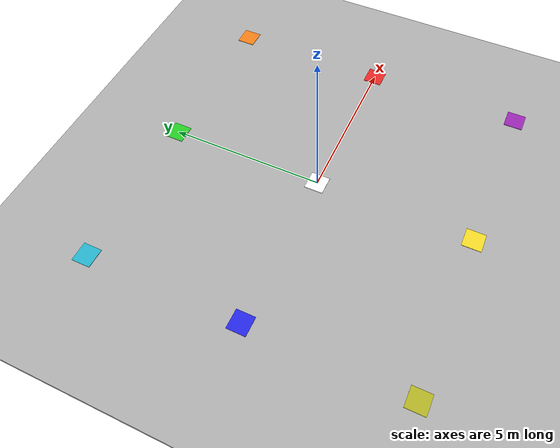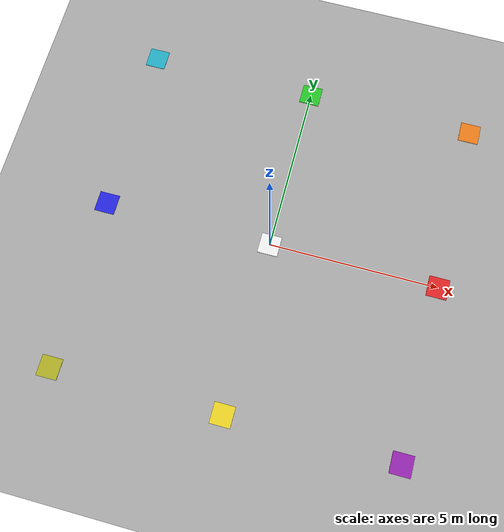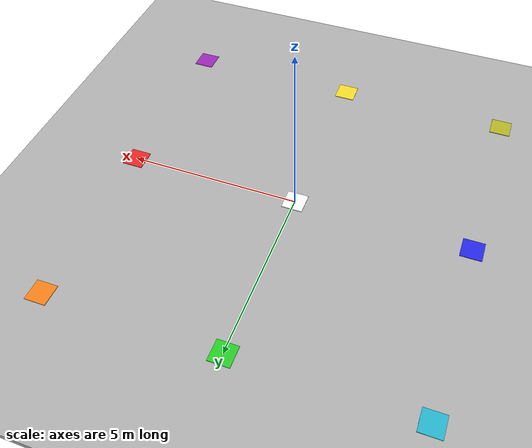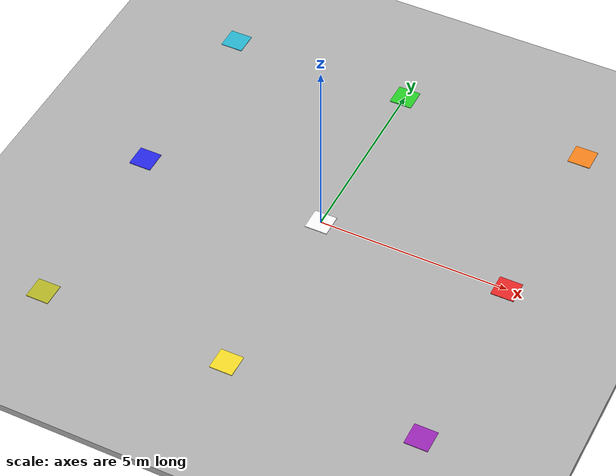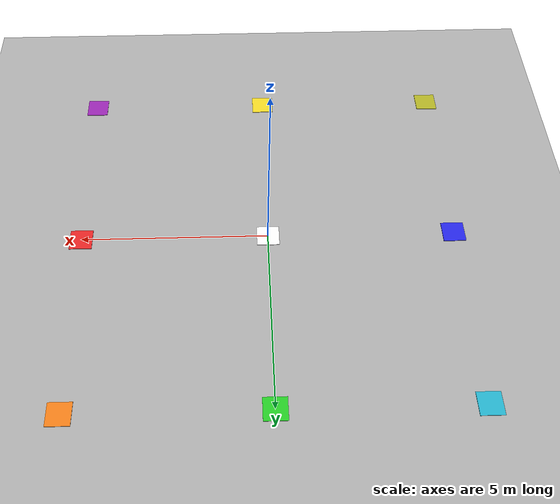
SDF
<?xml version="1.0" ?>
<sdf version="1.9">
  <world name="apf_open_arena">

    <gravity>0 0 -9.81</gravity>

    <physics name="default_physics" type="ode">
      <max_step_size>0.004</max_step_size>
      <real_time_factor>1.0</real_time_factor>
      <real_time_update_rate>250</real_time_update_rate>
    </physics>

    <scene>
      <ambient>0.75 0.75 0.75 1</ambient>
      <background>0.85 0.88 0.92 1</background>
      <shadows>false</shadows>
    </scene>

    <light name="sun" type="directional">
      <cast_shadows>false</cast_shadows>
      <pose>0 0 100 0 0 0</pose>
      <diffuse>0.95 0.95 0.95 1</diffuse>
      <specular>0.2 0.2 0.2 1</specular>
      <direction>-0.45 0.15 -0.88</direction>
    </light>

    <!-- Flat open ground — no obstacles. For Stage C the drones themselves
         are the only obstacles; mutual APF repulsion is the thing under test. -->
    <model name="ground">
      <static>true</static>
      <link name="link">
        <collision name="collision">
          <geometry>
            <box><size>80 80 0.2</size></box>
          </geometry>
        </collision>
        <visual name="visual">
          <geometry>
            <box><size>80 80 0.2</size></box>
          </geometry>
          <material>
            <ambient>0.58 0.58 0.58 1</ambient>
            <diffuse>0.68 0.68 0.68 1</diffuse>
          </material>
        </visual>
      </link>
      <pose>0 0 -0.1 0 0 0</pose>
    </model>

    <model name="flow_marker_center"><static>true</static><link name="link">
      <visual name="visual"><geometry><box><size>0.6 0.6 0.02</size></box></geometry>
        <material><ambient>0.9 0.9 0.9 1</ambient><diffuse>0.97 0.97 0.97 1</diffuse></material></visual>
      <collision name="collision"><geometry><box><size>0.6 0.6 0.02</size></box></geometry></collision>
    </link><pose>0 0 0.01 0 0 0</pose></model>

    <model name="flow_marker_n"><static>true</static><link name="link">
      <visual name="visual"><geometry><box><size>0.6 0.6 0.02</size></box></geometry>
        <material><ambient>0.8 0.1 0.1 1</ambient><diffuse>0.9 0.15 0.15 1</diffuse></material></visual>
      <collision name="collision"><geometry><box><size>0.6 0.6 0.02</size></box></geometry></collision>
    </link><pose>5 0 0.01 0 0 0</pose></model>
    <model name="flow_marker_s"><static>true</static><link name="link">
      <visual name="visual"><geometry><box><size>0.6 0.6 0.02</size></box></geometry>
        <material><ambient>0.1 0.1 0.8 1</ambient><diffuse>0.15 0.15 0.9 1</diffuse></material></visual>
      <collision name="collision"><geometry><box><size>0.6 0.6 0.02</size></box></geometry></collision>
    </link><pose>-5 0 0.01 0 0 0</pose></model>
    <model name="flow_marker_e"><static>true</static><link name="link">
      <visual name="visual"><geometry><box><size>0.6 0.6 0.02</size></box></geometry>
        <material><ambient>0.1 0.7 0.1 1</ambient><diffuse>0.15 0.8 0.15 1</diffuse></material></visual>
      <collision name="collision"><geometry><box><size>0.6 0.6 0.02</size></box></geometry></collision>
    </link><pose>0 5 0.01 0 0 0</pose></model>
    <model name="flow_marker_w"><static>true</static><link name="link">
      <visual name="visual"><geometry><box><size>0.6 0.6 0.02</size></box></geometry>
        <material><ambient>0.85 0.75 0.1 1</ambient><diffuse>0.95 0.85 0.15 1</diffuse></material></visual>
      <collision name="collision"><geometry><box><size>0.6 0.6 0.02</size></box></geometry></collision>
    </link><pose>0 -5 0.01 0 0 0</pose></model>

    <model name="flow_marker_ne"><static>true</static><link name="link">
      <visual name="visual"><geometry><box><size>0.6 0.6 0.02</size></box></geometry>
        <material><ambient>0.85 0.4 0.05 1</ambient><diffuse>0.95 0.5 0.1 1</diffuse></material></visual>
      <collision name="collision"><geometry><box><size>0.6 0.6 0.02</size></box></geometry></collision>
    </link><pose>5 5 0.01 0 0 0</pose></model>
    <model name="flow_marker_nw"><static>true</static><link name="link">
      <visual name="visual"><geometry><box><size>0.6 0.6 0.02</size></box></geometry>
        <material><ambient>0.5 0.1 0.6 1</ambient><diffuse>0.6 0.15 0.7 1</diffuse></material></visual>
      <collision name="collision"><geometry><box><size>0.6 0.6 0.02</size></box></geometry></collision>
    </link><pose>5 -5 0.01 0 0 0</pose></model>
    <model name="flow_marker_se"><static>true</static><link name="link">
      <visual name="visual"><geometry><box><size>0.6 0.6 0.02</size></box></geometry>
        <material><ambient>0.1 0.6 0.7 1</ambient><diffuse>0.15 0.7 0.8 1</diffuse></material></visual>
      <collision name="collision"><geometry><box><size>0.6 0.6 0.02</size></box></geometry></collision>
    </link><pose>-5 5 0.01 0 0 0</pose></model>
    <model name="flow_marker_sw"><static>true</static><link name="link">
      <visual name="visual"><geometry><box><size>0.6 0.6 0.02</size></box></geometry>
        <material><ambient>0.6 0.6 0.1 1</ambient><diffuse>0.7 0.7 0.15 1</diffuse></material></visual>
      <collision name="collision"><geometry><box><size>0.6 0.6 0.02</size></box></geometry></collision>
    </link><pose>-5 -5 0.01 0 0 0</pose></model>

  </world>
</sdf>
